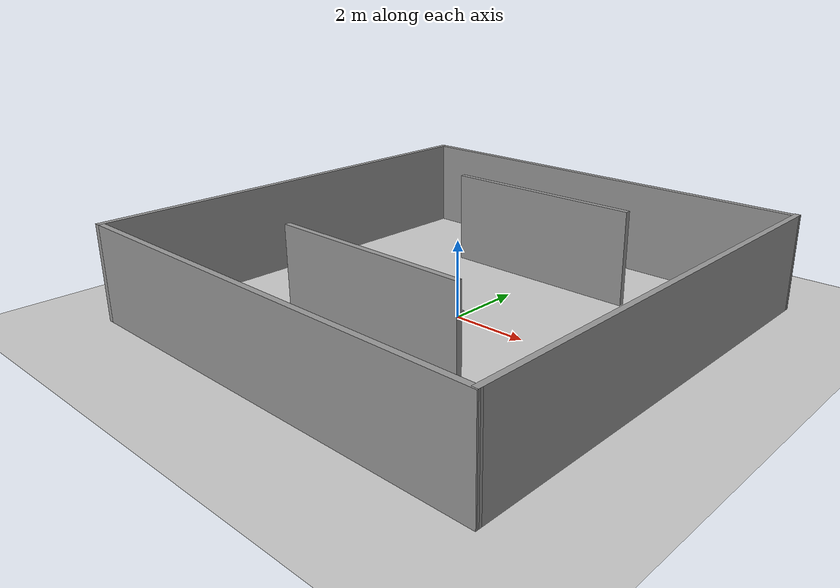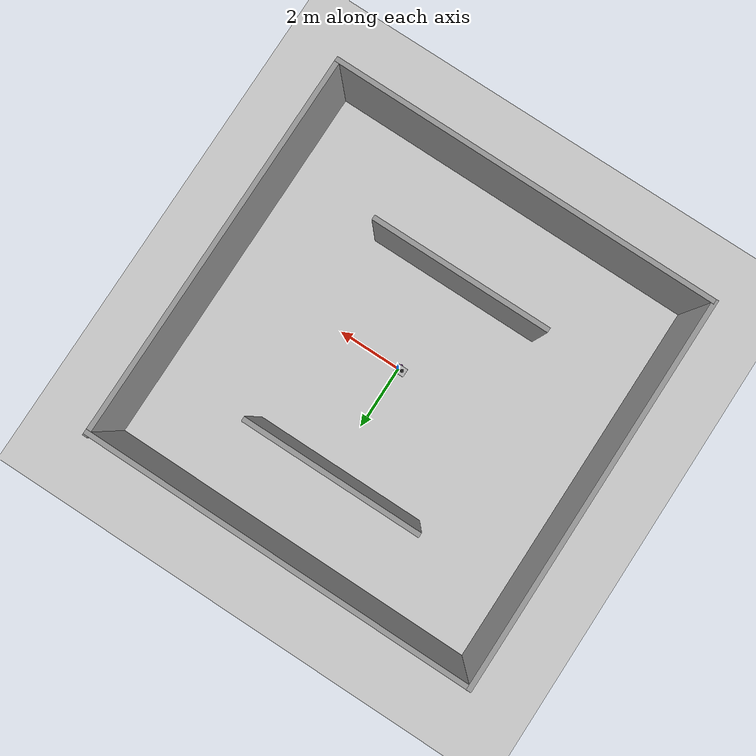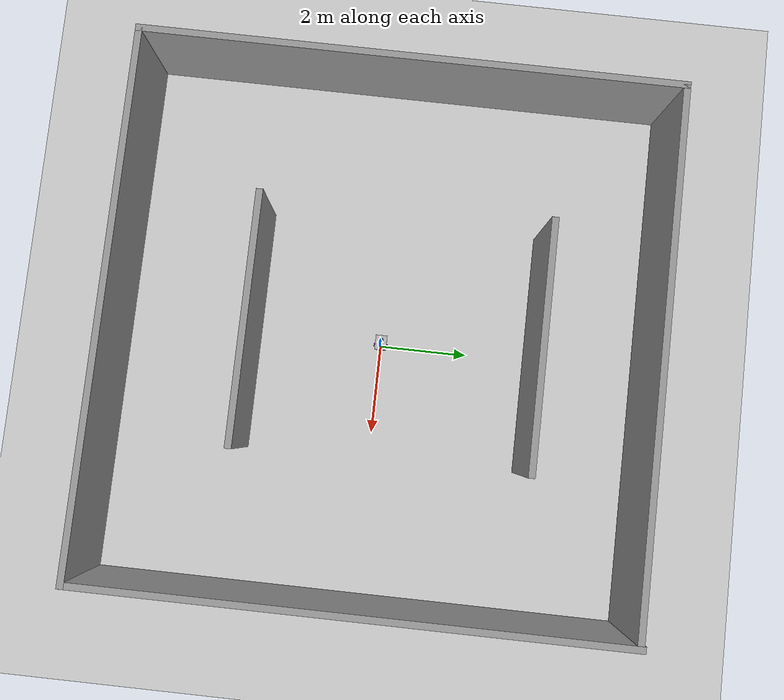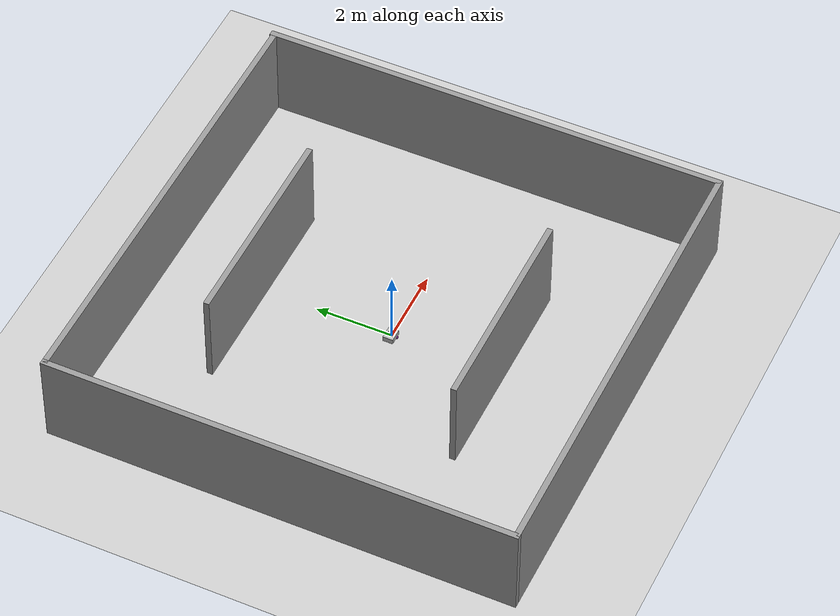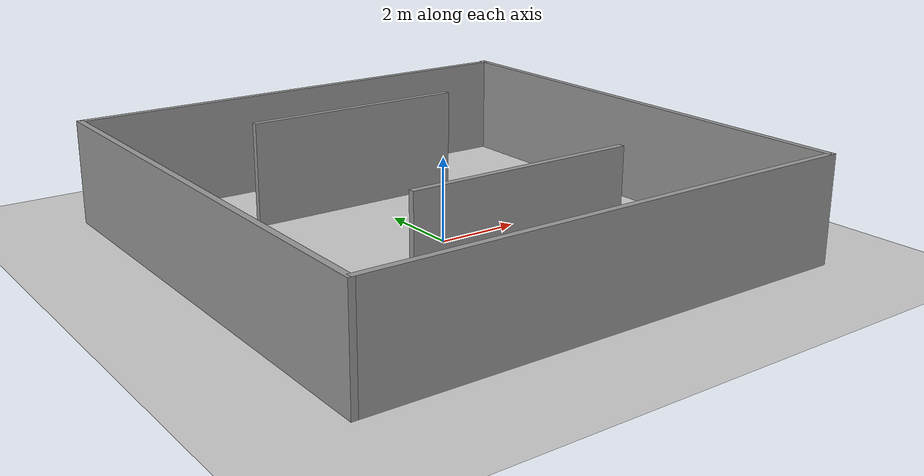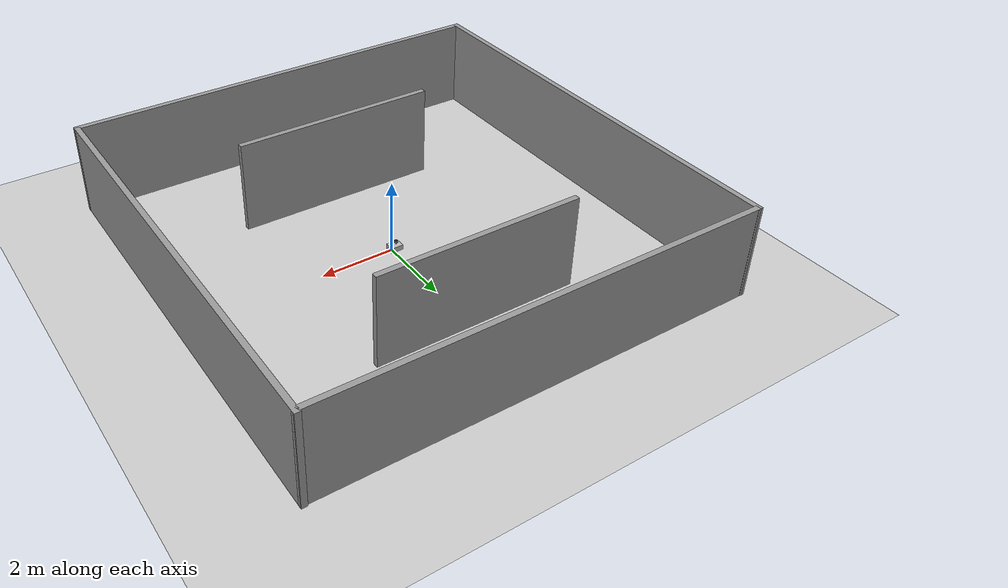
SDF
<sdf version="1.7">
 <world name="default">
  <light name="sun" type="directional">
   <pose>0 0 10 0 -0 0</pose>
   <diffuse>0.8 0.8 0.8 1</diffuse>
   <specular>0.2 0.2 0.2 1</specular>
   <attenuation>
    <range>1000</range>
    <constant>0.9</constant>
    <linear>0.01</linear>
    <quadratic>0.001</quadratic>
   </attenuation>
   <direction>-0.5 0.1 -0.9</direction>
   <spot><inner_angle>0</inner_angle><outer_angle>0</outer_angle><falloff>0</falloff></spot>
  </light>
  <model name="ground_plane">
   <static>1</static>
   <link name="link">
    <collision name="collision">
     <geometry><plane><normal>0 0 1</normal><size>100 100</size></plane></geometry>
     <surface><friction><ode><mu>100</mu><mu2>50</mu2></ode></friction></surface>
    </collision>
    <visual name="visual">
     <cast_shadows>0</cast_shadows>
     <geometry><plane><normal>0 0 1</normal><size>100 100</size></plane></geometry>
     <material>
      <script><uri>file://media/materials/scripts/gazebo.material</uri><name>Gazebo/Grey</name></script>
     </material>
    </visual>
   </link>
  </model>
  <gravity>0 0 -9.8</gravity>
  <magnetic_field>6e-06 2.3e-05 -4.2e-05</magnetic_field>
  <atmosphere type="adiabatic"/>
  <physics type="ode">
   <max_step_size>0.001</max_step_size>
   <real_time_factor>1</real_time_factor>
   <real_time_update_rate>1000</real_time_update_rate>
  </physics>
  <scene><ambient>0.4 0.4 0.4 1</ambient><background>0.7 0.7 0.7 1</background><shadows>1</shadows></scene>
  <audio><device>default</device></audio>
  <spherical_coordinates>
   <surface_model>EARTH_WGS84</surface_model>
   <latitude_deg>0</latitude_deg>
   <longitude_deg>0</longitude_deg>
   <elevation>0</elevation>
   <heading_deg>0</heading_deg>
  </spherical_coordinates>
  <model name="my_bot">
   <link name="base_link">
    <inertial>
     <pose>-0.067475 0 0.081098 0 -0 0</pose>
     <mass>0.61</mass>
     <inertia>
      <ixx>0.00561003</ixx>
      <ixy>0</ixy>
      <ixz>0.000453811</ixz>
      <iyy>0.00760348</iyy>
      <iyz>0</iyz>
      <izz>0.00797093</izz>
     </inertia>
    </inertial>
    <collision name="base_link_fixed_joint_lump__chassis_collision">
     <pose>-0.0585 0 0.059 0 -0 0</pose>
     <geometry><box><size>0.335 0.265 0.138</size></box></geometry>
    </collision>
    <collision name="base_link_fixed_joint_lump__caster_wheel_collision_1">
     <pose>-0.151 0 -0.023 0 -0 0</pose>
     <geometry><sphere><radius>0.01</radius></sphere></geometry>
     <surface><friction><ode><mu>0.001</mu><mu2>0.001</mu2></ode></friction></surface>
    </collision>
    <collision name="base_link_fixed_joint_lump__laser_frame_collision_2">
     <pose>-0.104 0 0.202 0 -0 0</pose>
     <geometry><cylinder><length>0.04</length><radius>0.05</radius></cylinder></geometry>
    </collision>
    <visual name="base_link_fixed_joint_lump__chassis_visual">
     <pose>-0.0585 0 0.059 0 -0 0</pose>
     <geometry><box><size>0.335 0.265 0.138</size></box></geometry>
     <material>
      <script><name>Gazebo/Teal</name><uri>file://media/materials/scripts/gazebo.material</uri></script>
     </material>
    </visual>
    <visual name="base_link_fixed_joint_lump__caster_wheel_visual_1">
     <pose>-0.151 0 -0.023 0 -0 0</pose>
     <geometry><sphere><radius>0.01</radius></sphere></geometry>
     <material>
      <script><name>Gazebo/White</name><uri>file://media/materials/scripts/gazebo.material</uri></script>
     </material>
    </visual>
    <visual name="base_link_fixed_joint_lump__face_link_visual_2">
     <pose>0.109 0.05 0.069 3.14159 1.57079 3.14159</pose>
     <geometry><cylinder><length>0.002</length><radius>0.01</radius></cylinder></geometry>
     <material>
      <script><name>Gazebo/Black</name><uri>file://media/materials/scripts/gazebo.material</uri></script>
     </material>
    </visual>
    <visual name="base_link_fixed_joint_lump__face_link_visual_3">
     <pose>0.109 -0.05 0.069 3.14159 1.57079 3.14159</pose>
     <geometry><cylinder><length>0.002</length><radius>0.01</radius></cylinder></geometry>
     <material>
      <script><name>Gazebo/Black</name><uri>file://media/materials/scripts/gazebo.material</uri></script>
     </material>
    </visual>
    <visual name="base_link_fixed_joint_lump__face_link_visual_4">
     <pose>0.098 0 0.059 0 1.5 0</pose>
     <geometry><cylinder><length>0.02</length><radius>0.05</radius></cylinder></geometry>
     <material>
      <script><name>Gazebo/Black</name><uri>file://media/materials/scripts/gazebo.material</uri></script>
     </material>
    </visual>
    <visual name="base_link_fixed_joint_lump__laser_frame_visual_5">
     <pose>-0.104 0 0.202 0 -0 0</pose>
     <geometry><cylinder><length>0.04</length><radius>0.05</radius></cylinder></geometry>
     <material>
      <script><name>Gazebo/Black</name><uri>file://media/materials/scripts/gazebo.material</uri></script>
     </material>
    </visual>
    <visual name="base_link_fixed_joint_lump__laser_frame_visual_6">
     <pose>-0.104 0 0.152 0 -0 0</pose>
     <geometry><cylinder><length>0.1</length><radius>0.01</radius></cylinder></geometry>
     <material>
      <script><name>Gazebo/Black</name><uri>file://media/materials/scripts/gazebo.material</uri></script>
     </material>
    </visual>
    <sensor name="laser" type="ray">
     <visualize>0</visualize>
     <update_rate>10</update_rate>
     <ray>
      <scan>
       <horizontal>
        <samples>360</samples>
        <min_angle>-3.14</min_angle>
        <max_angle>3.14</max_angle>
        <resolution>1</resolution>
       </horizontal>
       <vertical><samples>1</samples><min_angle>0</min_angle><max_angle>0</max_angle></vertical>
      </scan>
      <range><min>0.3</min><max>12</max></range>
     </ray>
     <plugin name="laser_controller" filename="libgazebo_ros_ray_sensor.so">
      <ros><argument>~/out:=scan</argument></ros>
      <output_type>sensor_msgs/LaserScan</output_type>
      <frame_name>laser_frame</frame_name>
     </plugin>
     <pose>-0.104 0 0.202 0 -0 0</pose>
    </sensor>
   </link>
   <joint name="left_wheel_joint" type="revolute">
    <pose relative_to="base_link">0 0.1485 0 -1.5708 0 0</pose>
    <parent>base_link</parent>
    <child>left_wheel</child>
    <axis>
     <xyz>0 0 1</xyz>
     <limit><lower>-1e+16</lower><upper>1e+16</upper></limit>
     <dynamics><spring_reference>0</spring_reference><spring_stiffness>0</spring_stiffness></dynamics>
    </axis>
   </joint>
   <link name="left_wheel">
    <pose relative_to="left_wheel_joint">0 0 0 0 -0 0</pose>
    <inertial>
     <mass>0.05</mass>
     <inertia>
      <ixx>1.64292e-05</ixx>
      <ixy>0</ixy>
      <ixz>0</ixz>
      <iyy>1.64292e-05</iyy>
      <iyz>0</iyz>
      <izz>2.7225e-05</izz>
     </inertia>
    </inertial>
    <collision name="left_wheel_collision">
     <geometry><sphere><radius>0.033</radius></sphere></geometry>
    </collision>
    <visual name="left_wheel_visual">
     <geometry><cylinder><length>0.026</length><radius>0.033</radius></cylinder></geometry>
     <material>
      <script><name>Gazebo/Purple</name><uri>file://media/materials/scripts/gazebo.material</uri></script>
     </material>
    </visual>
   </link>
   <joint name="right_wheel_joint" type="revolute">
    <pose relative_to="base_link">0 -0.1485 0 1.5708 -0 0</pose>
    <parent>base_link</parent>
    <child>right_wheel</child>
    <axis>
     <xyz>0 0 -1</xyz>
     <limit><lower>-1e+16</lower><upper>1e+16</upper></limit>
     <dynamics><spring_reference>0</spring_reference><spring_stiffness>0</spring_stiffness></dynamics>
    </axis>
   </joint>
   <link name="right_wheel">
    <pose relative_to="right_wheel_joint">0 0 0 0 -0 0</pose>
    <inertial>
     <mass>0.05</mass>
     <inertia>
      <ixx>1.64292e-05</ixx>
      <ixy>0</ixy>
      <ixz>0</ixz>
      <iyy>1.64292e-05</iyy>
      <iyz>0</iyz>
      <izz>2.7225e-05</izz>
     </inertia>
    </inertial>
    <collision name="right_wheel_collision">
     <geometry><sphere><radius>0.033</radius></sphere></geometry>
    </collision>
    <visual name="right_wheel_visual">
     <geometry><cylinder><length>0.026</length><radius>0.033</radius></cylinder></geometry>
     <material>
      <script><name>Gazebo/Purple</name><uri>file://media/materials/scripts/gazebo.material</uri></script>
     </material>
    </visual>
   </link>
   <static>0</static>
   <plugin name="gazebo_ros2_control" filename="libgazebo_ros2_control.so">
    <parameters>/home/su1jun/ros2_ws/install/capstone/share/capstone/config/my_controllers.yaml</parameters>
    <parameters>/home/su1jun/ros2_ws/install/capstone/share/capstone/config/gaz_ros2_ctl_use_sim.yaml</parameters>
   </plugin>
   <pose>-0.023752 3.4e-05 0.032997 -1.7e-05 1.8e-05 0.000847</pose>
  </model>
  <model name="test2">
   <pose>-0.158611 0.013799 0 0 -0 0</pose>
   <link name="Wall_11">
    <collision name="Wall_11_Collision">
     <geometry><box><size>5.5 0.15 2.5</size></box></geometry>
     <pose>0 0 1.25 0 -0 0</pose>
    </collision>
    <visual name="Wall_11_Visual">
     <pose>0 0 1.25 0 -0 0</pose>
     <geometry><box><size>5.5 0.15 2.5</size></box></geometry>
     <material>
      <script><uri>file://media/materials/scripts/gazebo.material</uri><name>Gazebo/Grey</name></script>
      <ambient>1 1 1 1</ambient>
     </material>
     <meta><layer>0</layer></meta>
    </visual>
    <pose>0.062847 -2.89541 0 0 -0 0</pose>
   </link>
   <link name="Wall_3">
    <collision name="Wall_3_Collision">
     <geometry><box><size>11.9297 0.15 2.5</size></box></geometry>
     <pose>0 0 1.25 0 -0 0</pose>
    </collision>
    <visual name="Wall_3_Visual">
     <pose>0 0 1.25 0 -0 0</pose>
     <geometry><box><size>11.9297 0.15 2.5</size></box></geometry>
     <material>
      <script><uri>file://media/materials/scripts/gazebo.material</uri><name>Gazebo/Grey</name></script>
      <ambient>1 1 1 1</ambient>
     </material>
     <meta><layer>0</layer></meta>
    </visual>
    <pose>0.035066 -5.925 0 0 -0 -0.002986</pose>
   </link>
   <link name="Wall_4">
    <collision name="Wall_4_Collision">
     <geometry><box><size>12 0.15 2.5</size></box></geometry>
     <pose>0 0 1.25 0 -0 0</pose>
    </collision>
    <visual name="Wall_4_Visual">
     <pose>0 0 1.25 0 -0 0</pose>
     <geometry><box><size>12 0.15 2.5</size></box></geometry>
     <material>
      <script><uri>file://media/materials/scripts/gazebo.material</uri><name>Gazebo/Grey</name></script>
      <ambient>1 1 1 1</ambient>
     </material>
     <meta><layer>0</layer></meta>
    </visual>
    <pose>5.92489 0.01759 0 0 -0 1.5708</pose>
   </link>
   <link name="Wall_5">
    <collision name="Wall_5_Collision">
     <geometry><box><size>11.9297 0.15 2.5</size></box></geometry>
     <pose>0 0 1.25 0 -0 0</pose>
    </collision>
    <visual name="Wall_5_Visual">
     <pose>0 0 1.25 0 -0 0</pose>
     <geometry><box><size>11.9297 0.15 2.5</size></box></geometry>
     <material>
      <script><uri>file://media/materials/scripts/gazebo.material</uri><name>Gazebo/Grey</name></script>
      <ambient>1 1 1 1</ambient>
     </material>
     <meta><layer>0</layer></meta>
    </visual>
    <pose>0.035066 5.925 0 0 -0 3.13861</pose>
   </link>
   <link name="Wall_6">
    <collision name="Wall_6_Collision">
     <geometry><box><size>12 0.15 2.5</size></box></geometry>
     <pose>0 0 1.25 0 -0 0</pose>
    </collision>
    <visual name="Wall_6_Visual">
     <pose>0 0 1.25 0 -0 0</pose>
     <geometry><box><size>12 0.15 2.5</size></box></geometry>
     <material>
      <script><uri>file://media/materials/scripts/gazebo.material</uri><name>Gazebo/Grey</name></script>
      <ambient>1 1 1 1</ambient>
     </material>
     <meta><layer>0</layer></meta>
    </visual>
    <pose>-5.92511 0.01759 0 0 -0 -1.5708</pose>
   </link>
   <link name="Wall_8">
    <collision name="Wall_8_Collision">
     <geometry><box><size>5.5 0.15 2.5</size></box></geometry>
     <pose>0 0 1.25 0 -0 0</pose>
    </collision>
    <visual name="Wall_8_Visual">
     <pose>0 0 1.25 0 -0 0</pose>
     <geometry><box><size>5.5 0.15 2.5</size></box></geometry>
     <material>
      <script><uri>file://media/materials/scripts/gazebo.material</uri><name>Gazebo/Grey</name></script>
      <ambient>1 1 1 1</ambient>
     </material>
     <meta><layer>0</layer></meta>
    </visual>
    <pose>-0.006545 3.39612 0 0 -0 0</pose>
   </link>
   <static>1</static>
  </model>
 </world>
</sdf>
